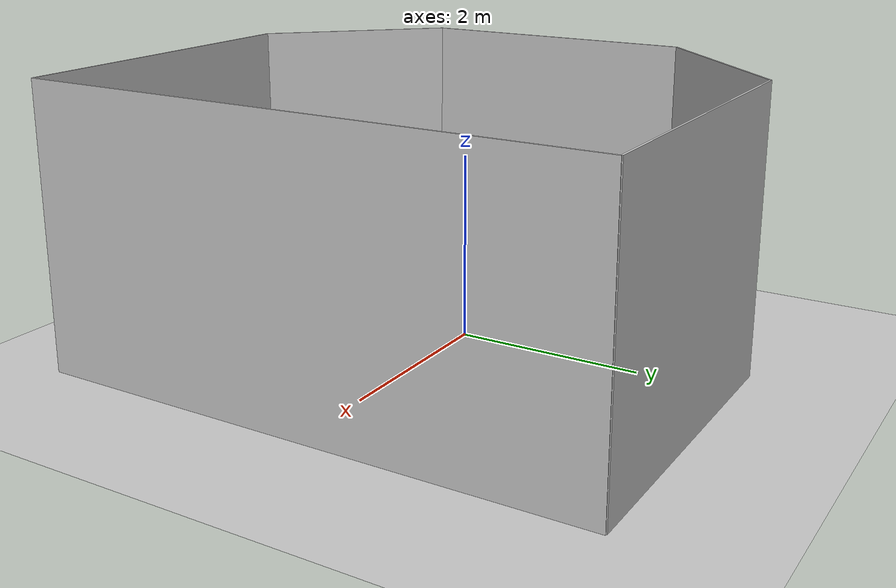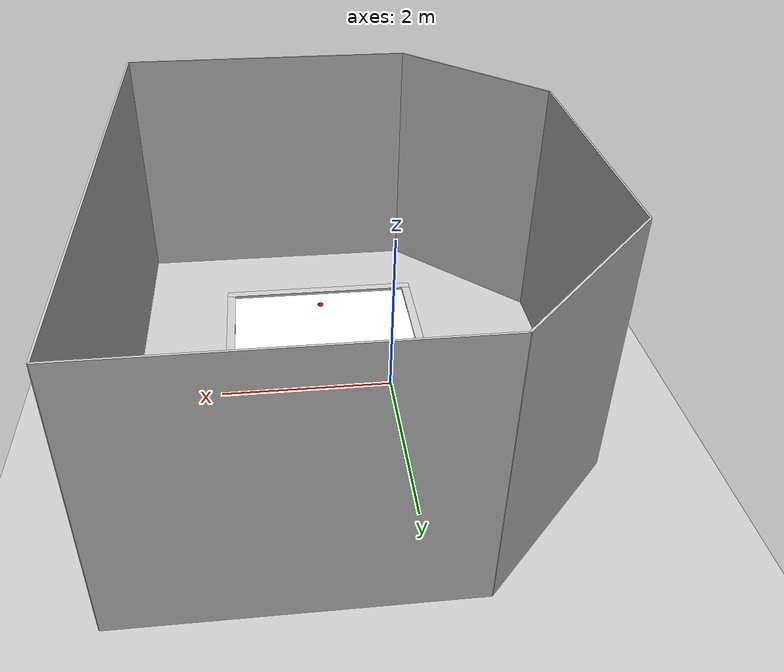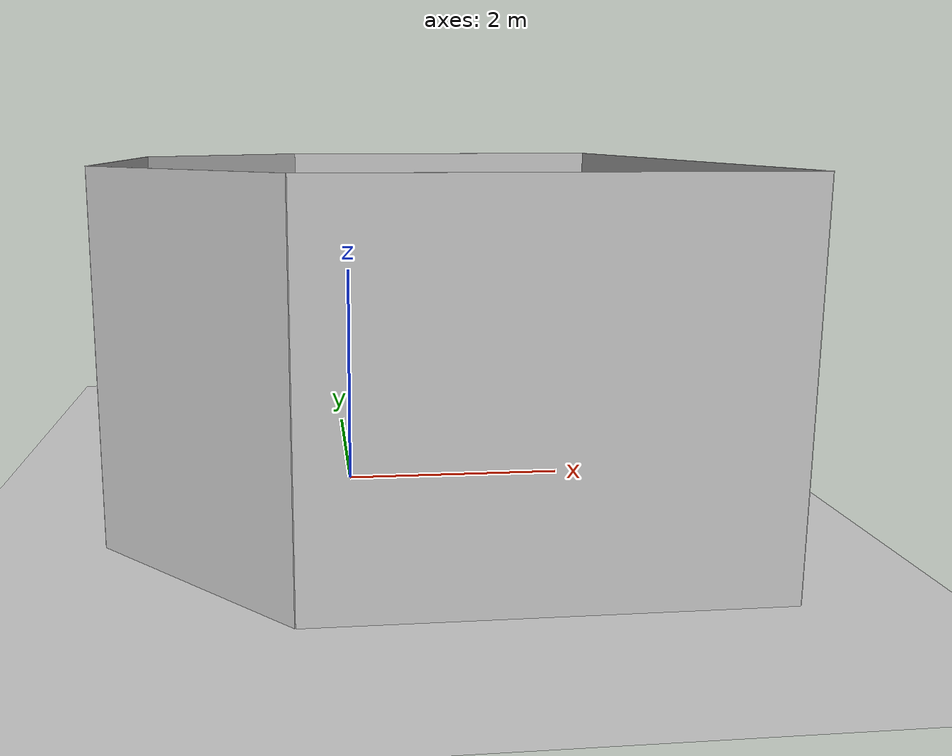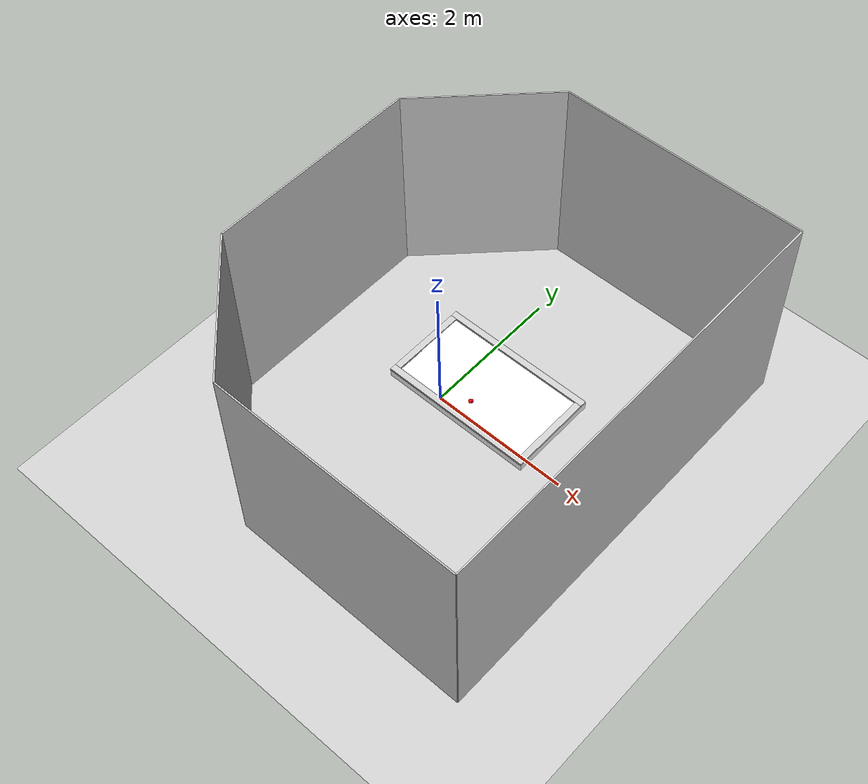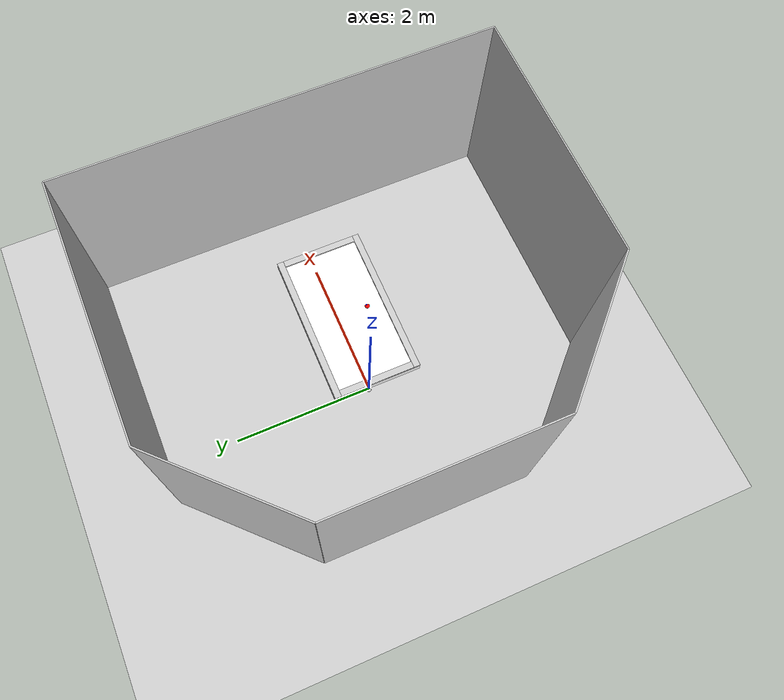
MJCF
<mujoco model="air_hockey_table">

    <option timestep="0.001" cone="elliptic" impratio="1"/>

    <asset>
        <material name="grey" specular="0.5" shininess="0.25" rgba="0.8 0.8 0.8 1"/>
        <material name="white" specular="0.5" shininess="0.25" rgba="1.0 1.0 1.0 1"/>
        <material name="red" specular="0.5" shininess="0.25" rgba="1.0 0.0 0.0 1"/>
        <material name="blue" specular="0.5" shininess="0.25" rgba="0.0 0.0 1.0 1"/>
        <material name="transparent" specular="0.5" shininess="0.25" rgba="0.0 0.0 1.0 0"/>

        <texture type="skybox" builtin="gradient" rgb1="0.3 0.5 0.7" rgb2="0 0 0" width="512"
                 height="3072"/>

        <texture file="../textures/light-gray-floor-tile.png" type="2d" name="texplane"/>
        <material name="floorplane" reflectance="0.01" shininess="0.0" specular="0.0" texrepeat="2 2" texture="texplane" texuniform="true"/>

        <!-- plaster walls -->
        <texture file="../textures/light-gray-plaster.png" type="2d" name="tex-light-gray-plaster"/>
        <material name="walls_mat" reflectance="0.0" shininess="0.1" specular="0.1" texrepeat="3 3" texture="tex-light-gray-plaster" texuniform="true" />

        <texture file="../textures/ceramic.png" type="cube" name="tex-ceramic"/>
        <material name="table_ceramic" reflectance="0.0" shininess="0.0" specular="0.2" texrepeat="1 1" texture="tex-ceramic" />

    </asset>

    <default>
        <geom condim="4" solref="0.02 0.3"/>
        <default class="rim">
                <geom type="box" material="grey" condim="6" friction="10000 0.0 0.0" priority="1"
                solref="-800000 -250" solimp="0.99 0.999 0.001 0.5 2" group="1"/>
        </default>
    </default>

    <worldbody>

        <site name="goal_region" type="cylinder" pos="0.05 0.3 1" size="0.05" rgba="1 0 0 0" axisangle="0 1 0 -0.09"/>
        <site name="desired_vel" type="cylinder" pos="0.3 0 1" size="0.005 0.05" rgba="0 0 1 0" axisangle="1 1 0 1.480796326794896"/>

        <body name="table" pos="0.8 0 1.0" axisangle="0 1 0 -0.09">
            <body name="table_surface">
                <geom name="surface" type="box" material="white" size="1.064 0.609 0.0505" pos="0 0 -0.0505"
                condim="4" friction="0.08 0.08 0.0" priority="1"
                group="1" contype="1" conaffinity="1"/>
            </body>
            <body name="rim">

                <!-- not here -->

                <geom name="rim_home_l" class="rim" size="0.01 0.1945 0.005" pos="-1.019 0.3245 0.005" group="1"/>
                <geom name="rim_home_r" class="rim" size="0.045 0.1945 0.005" pos="-1.019 -0.3245 0.005" group="1"/>
                <geom name="rim_home_bound_l" class="rim" type="cylinder" size="0.005 0.005" pos="-0.979 0.13 0.005" group="1"/>
                <geom name="rim_home_bound_l_tail" class="rim" size="0.0425 0.005 0.005" pos="-1.0215 0.13 0.005"/>
                <geom name="rim_home_bound_r" class="rim" type="cylinder" size="0.005 0.005" pos="-0.979 -0.13 0.005" group="1"/>
                <geom name="rim_home_bound_r_tail" class="rim" size="0.0425 0.005 0.005" pos="-1.0215 -0.13 0.005" group="1"/>

                <geom name="rim_home_top" class="rim" size="0.045 0.519 0.01" pos="-1.019 0 0.02" group="1"/>

                <geom name="rim_left" class="rim" size="1.064 0.045 0.015" pos="0 0.564 0.015" group="1"/>
                <geom name="rim_right" class="rim" size="1.064 0.045 0.015" pos="0 -0.564 0.015" group="1"/>

                <!-- not here -->

                <geom name="rim_away_l" class="rim" size="0.01 0.1945 0.005" pos="1.019 0.3245 0.005" group="1"/>
                <geom name="rim_away_r" class="rim" size="0.01 0.1945 0.005" pos="1.019 -0.3245 0.005" group="1"/>
                <geom name="rim_away_bound_l" class="rim" type="cylinder" size="0.005 0.005" pos="0.979 0.13 0.005" group="1"/>
                <geom name="rim_away_bound_l_tail" class="rim" size="0.0425 0.005 0.005" pos="1.0215 0.13 0.005" group="1"/>
                <geom name="rim_away_bound_r" class="rim" type="cylinder" size="0.005 0.005" pos="0.979 -0.13 0.005" group="1"/>
                <geom name="rim_away_bound_r_tail" class="rim" size="0.0425 0.005 0.005" pos="1.0215 -0.13 0.005" group="1"/>
                <geom name="rim_away_top" class="rim" size="0.045 0.519 0.01" pos="1.019 0 0.02" group="1"/>
            </body>
        </body>

        <body name="base" pos="0.8 -0.3 1.2" axisangle="0 1 0 -0.09">
            <joint name="puck_x" type="slide" axis="1 0 0" damping="0.01" limited="false"/>
            <joint name="puck_y" type="slide" axis="0 1 0" damping="0.01" limited="false"/>
            <joint name="puck_yaw" type="hinge" axis="0 0 1" damping="2e-6" limited="false"/>
            <body name="puck">
                <geom pos="0 0 -0.2" name="puck" type="cylinder" material="red" size="0.03165 0.009"
                      condim="4" priority="0" group="1"/>
                <geom pos="0.02 0 -0.2" type="cylinder" material="blue" size="0.01 0.0091"
                      condim="4" contype="0" conaffinity="0" group="1"/>
                <inertial pos="0 0 0" mass="0.01" diaginertia="2.5e-6 2.5e-6 5e-6"/>
            </body>
        </body>

        <site name="puck_vis" type="ellipsoid" size="0.03165 0.03165 0.004" pos="0 0 -0.05"/>
        <site name="puck_vis_rot" type="cylinder" size="0.0045 0.006" rgba="1 0 0 1" pos="0 0 -0.05"/>

        <!-- front view -->
        <camera mode="fixed" name="frontview" pos="1 0 1.45" quat="0.56 0.43 0.43 0.56"/>
        <!-- bird view -->
        <camera mode="fixed" name="birdview" pos="-0.2 0 7.0" quat="0.7071 0 0 0.7071"/>
        <!-- agent view -->
        <camera mode="fixed" name="agentview" pos="0.5 0 3" quat="0.7071 0 0 0.7071"/>
        <!-- side view -->
        <camera mode="fixed" name="sideview" pos="0.75 1.85 1.6" quat="0.009905065491771751 0.006877963156909582 0.5912228352893879 0.806418094001364" />

        <light pos="0 0 3" dir="0 0 -1" directional="true"/>
        <geom pos="0 0 -0.1" name="floor" size="0 0 0.05" type="plane" material="floorplane" group="1" />

        <!-- Walls (visual only) -->
        <geom pos="-1.25 2.25 1.5" quat="0.6532815 0.6532815 0.2705981 0.2705981" size="1.06 1.5 0.01" type="box" conaffinity="0" contype="0" group="1" name="wall_leftcorner_visual" material="walls_mat"/>
        <geom pos="-1.25 -2.25 1.5" quat="0.6532815 0.6532815 -0.2705981 -0.2705981" size="1.06 1.5 0.01" type="box" conaffinity="0" contype="0" group="1" name="wall_rightcorner_visual" material="walls_mat"/>
        <geom pos="1.25 3 1.5" quat="0.7071 0.7071 0 0" size="1.75 1.5 0.01" type="box" conaffinity="0" contype="0" group="1" name="wall_left_visual" material="walls_mat"/>
        <geom pos="1.25 -3 1.5" quat="0.7071 -0.7071 0 0" size="1.75 1.5 0.01" type="box" conaffinity="0" contype="0" group="1" name="wall_right_visual" material="walls_mat"/>
        <geom pos="-2 0 1.5" quat="0.5 0.5 0.5 0.5" size="1.5 1.5 0.01" type="box" conaffinity="0" contype="0" group="1" name="wall_rear_visual" material="walls_mat"/>
        <geom pos="3 0 1.5" quat="0.5 0.5 -0.5 -0.5" size="3 1.5 0.01" type="box" conaffinity="0" contype="0" group="1" name="wall_front_visual" material="walls_mat"/>

    </worldbody>

    <contact>
        <exclude body1="puck" body2="table_surface"/>
    </contact>

</mujoco>
